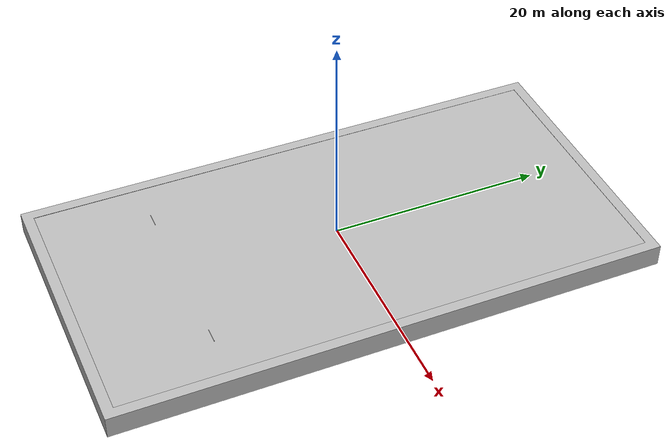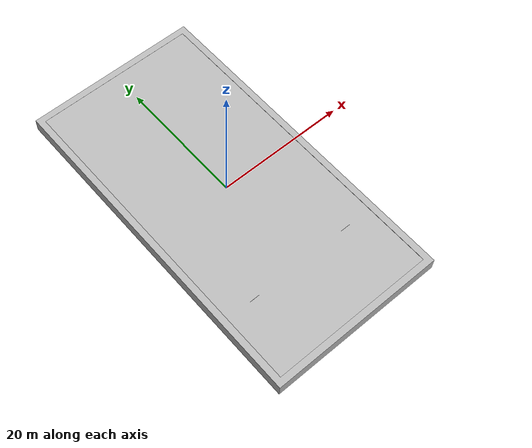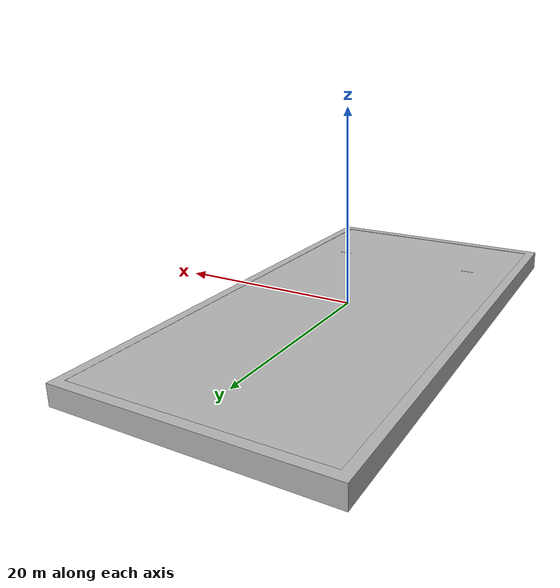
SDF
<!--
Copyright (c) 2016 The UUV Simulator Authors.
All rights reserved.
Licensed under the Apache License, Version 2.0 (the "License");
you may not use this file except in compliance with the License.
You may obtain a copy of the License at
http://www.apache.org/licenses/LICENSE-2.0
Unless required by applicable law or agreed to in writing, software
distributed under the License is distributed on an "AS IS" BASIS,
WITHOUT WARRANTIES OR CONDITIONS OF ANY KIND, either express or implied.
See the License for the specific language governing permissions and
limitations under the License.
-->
<sdf version="1">
 <world name="sauvc2022_arena">
  <physics name="default_physics" default="true" type="ode">
   <max_step_size>0.002</max_step_size>
   <real_time_factor>1</real_time_factor>
   <real_time_update_rate>500</real_time_update_rate>
   <ode><solver><type>quick</type><iters>50</iters><sor>0.5</sor></solver></ode>
  </physics>
  <scene>
   <ambient>0.01 0.01 0.01 1.0</ambient>
   <sky><clouds><speed>12</speed></clouds></sky>
   <shadows>0</shadows>
   <fog>
    <color>0.1 0.2 0.3 1.0</color>
    <type>linear</type>
    <density>0.001</density>
    <start>10</start>
    <end>200</end>
   </fog>
  </scene>
  <spherical_coordinates>
   <latitude_deg>56.71897669633431</latitude_deg>
   <longitude_deg>3.515625</longitude_deg>
  </spherical_coordinates>
  <include><uri>model://sun</uri></include>
  <include><name>water</name><uri>model://pool_water</uri></include>
  <include><name>pool</name><uri>model://sauvc2022_pool</uri><pose>0 0 0.07 1.57 0 0</pose></include>
  <include><name>drumRed1</name><uri>model://sauvc2022_drumred</uri><pose>-8 4 -1.9 1.57 0 0</pose></include>
  <include><name>drumBlue</name><uri>model://sauvc2022_drumblue</uri><pose>-8 6 -1.9 1.57 0 0</pose></include>
  <include><name>drumRed2</name><uri>model://sauvc2022_drumred</uri><pose>-8 8 -1.9 1.57 0 0</pose></include>
  <include><name>drumRed3</name><uri>model://sauvc2022_drumred</uri><pose>-8 10 -1.93 1.57 0 0</pose></include>
  <include>
   <name>qualGate1</name>
   <uri>model://sauvc2022_qualification</uri>
   <pose>8 -15 0.07 1.57 0 0</pose>
  </include>
  <include>
   <name>qualGate2</name>
   <uri>model://sauvc2022_qualification</uri>
   <pose>-8 -15 0.07 1.57 0 0</pose>
  </include>
  <include><name>rFlare</name><uri>model://sauvc2022_redflare</uri><pose>5.5 22 -1.9 1.57 0 0</pose></include>
  <plugin name="underwater_current_plugin" filename="libuuv_underwater_current_ros_plugin.so">
   <namespace>hydrodynamics</namespace>
   <constant_current>
    <topic>current_velocity</topic>
    <velocity><mean>0</mean><min>0</min><max>5</max><mu>0.0</mu><noiseAmp>0.0</noiseAmp></velocity>
    <horizontal_angle>
     <mean>0</mean>
     <min>-3.141592653589793238</min>
     <max>3.141592653589793238</max>
     <mu>0.0</mu>
     <noiseAmp>0.0</noiseAmp>
    </horizontal_angle>
    <vertical_angle>
     <mean>0</mean>
     <min>-3.141592653589793238</min>
     <max>3.141592653589793238</max>
     <mu>0.0</mu>
     <noiseAmp>0.0</noiseAmp>
    </vertical_angle>
   </constant_current>
  </plugin>
  <plugin name="sc_interface" filename="libuuv_sc_ros_interface_plugin.so"/>
 </world>
</sdf>

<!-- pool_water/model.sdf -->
<sdf version="1.5">
  <model name="pool_Water">
    <static>true</static>
    <link name="link">
      <visual name="ground">
        <cast_shadows>false</cast_shadows>
        <pose>0 0 -2 0 0 0</pose>
        <geometry>
          <box>
            <size>25 50 .1</size>
          </box>
        </geometry>
        <material>
          <script>
            <uri>file://Media/materials/scripts/sand.material</uri>
            <name>UUVSimulator/SandAndStones</name>
          </script>
        </material>
      </visual>

      <collision name="ground">
        <pose>0 0 -2 0 0 0</pose>
        <geometry>
          <box>
            <size>25 50 .1</size>
          </box>
        </geometry>
      </collision>

      <visual name="surface">
        <cast_shadows>false</cast_shadows>
        <pose>0 0 0 0 0 0</pose>
        <geometry>
          <box>
            <size>25 50 .1</size>
          </box>
        </geometry>
        <material>
          <script>
            <uri>file://Media/materials/scripts/water.material</uri>
            <name>UUVSimulator/StaticDeepWater</name>
          </script>
        </material>
      </visual>

      <visual name="north">
        <cast_shadows>false</cast_shadows>
        <pose>12.5 0 -1 0 0 0</pose>
        <geometry>
          <box>
            <size>.1 50 2</size>
          </box>
        </geometry>
        <material>
          <script>
            <uri>file://Media/materials/scripts/water.material</uri>
            <name>UUVSimulator/SeaWall</name>
          </script>
        </material>
      </visual>

      <visual name="south">
        <cast_shadows>false</cast_shadows>
        <pose>-12.5 0 -1 0 0 0</pose>
        <geometry>
          <box>
            <size>.1 50 2</size>
          </box>
        </geometry>
        <material>
          <script>
            <uri>file://Media/materials/scripts/water.material</uri>
            <name>UUVSimulator/SeaWall</name>
          </script>
        </material>
      </visual>

      <visual name="east">
        <cast_shadows>false</cast_shadows>
        <pose>0 -25 -1 0 0 0</pose>
        <geometry>
          <box>
            <size>25 .1 2</size>
          </box>
        </geometry>
        <material>
          <script>
            <uri>file://Media/materials/scripts/water.material</uri>
            <name>UUVSimulator/SeaWall</name>
          </script>
        </material>
      </visual>

      <visual name="west">
        <cast_shadows>false</cast_shadows>
        <pose>0 25 -1 0 0 0</pose>
        <geometry>
          <box>
            <size>25 .1 2</size>
          </box>
        </geometry>
        <material>
          <script>
            <uri>file://Media/materials/scripts/water.material</uri>
            <name>UUVSimulator/SeaWall</name>
          </script>
        </material>
      </visual>
    </link>
  </model>
</sdf>

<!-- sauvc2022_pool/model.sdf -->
<sdf version="1.5">
    <model name="sauvc2022_pool">
        <static>true</static>
        <link name="link">
            <collision name="collision">
                <geometry>
                    <mesh>
                        <uri>model://sauvc2022_pool/meshes/kolam.obj</uri>
                    </mesh>
                </geometry>
                <surface>
                    <friction>
                        <ode>
                            <mu>100</mu>
                            <mu2>50</mu2>
                        </ode>
                    </friction>
                </surface>
            </collision>
            <visual name="visual">
                <geometry>
                    <mesh>
                        <uri>model://sauvc2022_pool/meshes/kolam.obj</uri>
                    </mesh>
                </geometry>
                <material>
                    <script>
                        <uri>model://sauvc2022_pool/meshes/kolam.mtl</uri>
                        <name>sauvc2022_pool/material</name>
                    </script>
                </material>
            </visual>
        </link>
    </model>
</sdf>

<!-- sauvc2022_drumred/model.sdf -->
<sdf version="1.5">
    <model name="sauvc2022_drumred">
        <static>false</static>
        <link name="link">
            <collision name="collision">
                <geometry>
                    <mesh>
                        <uri>model://sauvc2022_drumred/meshes/Drum_Red.obj</uri>
                    </mesh>
                </geometry>
                <surface>
                    <friction>
                        <ode>
                            <mu>100</mu>
                            <mu2>50</mu2>
                        </ode>
                    </friction>
                </surface>
            </collision>
            <visual name="visual">
                <geometry>
                    <mesh>
                        <uri>model://sauvc2022_drumred/meshes/Drum_Red.obj</uri>
                    </mesh>
                </geometry>
                <material>
                    <script>
                        <uri>model://sauvc2022_drumred/meshes/Drum_Red.mtl</uri>
                        <name>sauvc2022_drumred/material</name>
                    </script>
                </material>
            </visual>
        </link>
    </model>
</sdf>

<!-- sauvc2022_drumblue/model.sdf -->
<sdf version="1.5">
    <model name="sauvc2022_drumblue">
        <static>false</static>
        <link name="link">
            <collision name="collision">
                <geometry>
                    <mesh>
                        <uri>model://sauvc2022_drumblue/meshes/Drum_Blue.obj</uri>
                    </mesh>
                </geometry>
                <surface>
                    <friction>
                        <ode>
                            <mu>100</mu>
                            <mu2>50</mu2>
                        </ode>
                    </friction>
                </surface>
            </collision>
            <visual name="visual">
                <geometry>
                    <mesh>
                        <uri>model://sauvc2022_drumblue/meshes/Drum_Blue.obj</uri>
                    </mesh>
                </geometry>
                <material>
                    <script>
                        <uri>model://sauvc2022_drumblue/meshes/Drum_Blue.mtl</uri>
                        <name>sauvc2022_drumblue/material</name>
                    </script>
                </material>
            </visual>
        </link>
    </model>
</sdf>

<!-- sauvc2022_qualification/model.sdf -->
<sdf version="1.5">
    <model name="sauvc2022_qualification">
        <static>true</static>
        <link name="link">
            <collision name="collision">
                <geometry>
                    <mesh>
                        <uri>model://sauvc2022_qualification/meshes/Qualification_Assembly.obj</uri>
                    </mesh>
                </geometry>
                <surface>
                    <friction>
                        <ode>
                            <mu>100</mu>
                            <mu2>50</mu2>
                        </ode>
                    </friction>
                </surface>
            </collision>
            <visual name="visual">
                <geometry>
                    <mesh>
                        <uri>model://sauvc2022_qualification/meshes/Qualification_Assembly.obj</uri>
                    </mesh>
                </geometry>
                <material>
                    <script>
                        <uri>model://sauvc2022_qualification/meshes/Qualification_Assembly.mtl</uri>
                        <name>sauvc2022_qualification/material</name>
                    </script>
                </material>
            </visual>
        </link>
    </model>
</sdf>

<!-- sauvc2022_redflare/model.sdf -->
<sdf version="1.5">
    <model name="sauvc2022_redflare">
        <static>false</static>
        <link name="link">
            <collision name="collision">
                <geometry>
                    <mesh>
                        <uri>model://sauvc2022_redflare/meshes/RedFlare.obj</uri>
                    </mesh>
                </geometry>
                <surface>
                    <friction>
                        <ode>
                            <mu>100</mu>
                            <mu2>50</mu2>
                        </ode>
                    </friction>
                </surface>
            </collision>
            <visual name="visual">
                <geometry>
                    <mesh>
                        <uri>model://sauvc2022_redflare/meshes/RedFlare.obj</uri>
                    </mesh>
                </geometry>
                <material>
                    <script>
                        <uri>model://sauvc2022_redflare/meshes/RedFlare.mtl</uri>
                        <name>sauvc2022_redflare/material</name>
                    </script>
                </material>
            </visual>
        </link>
    </model>
</sdf>
